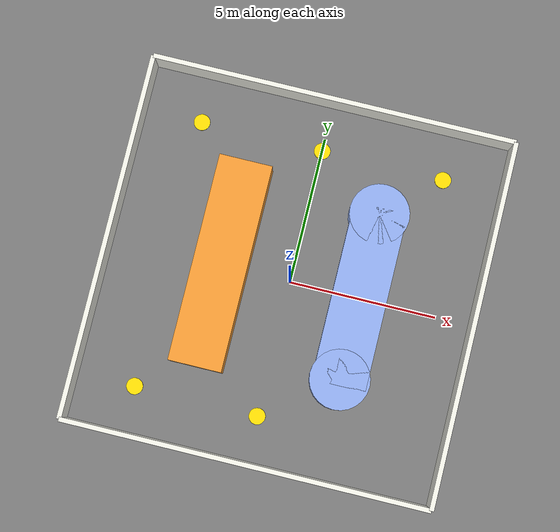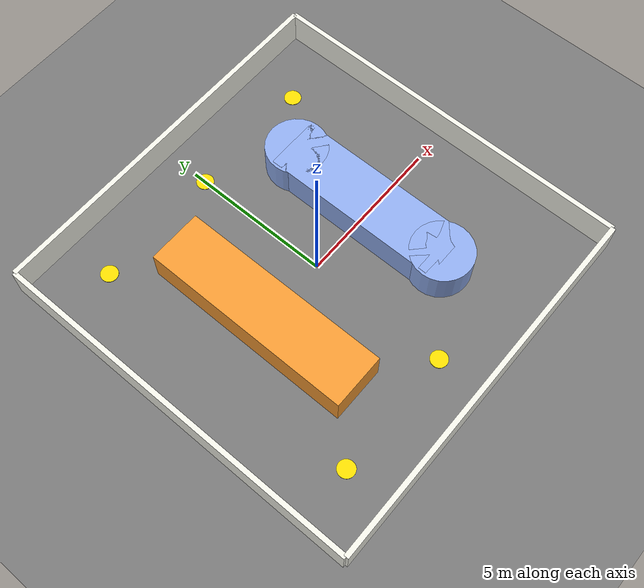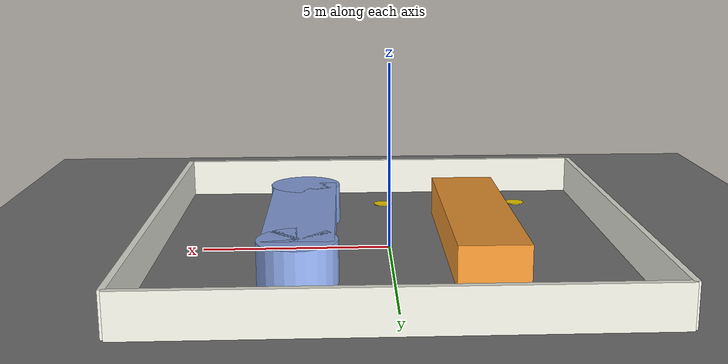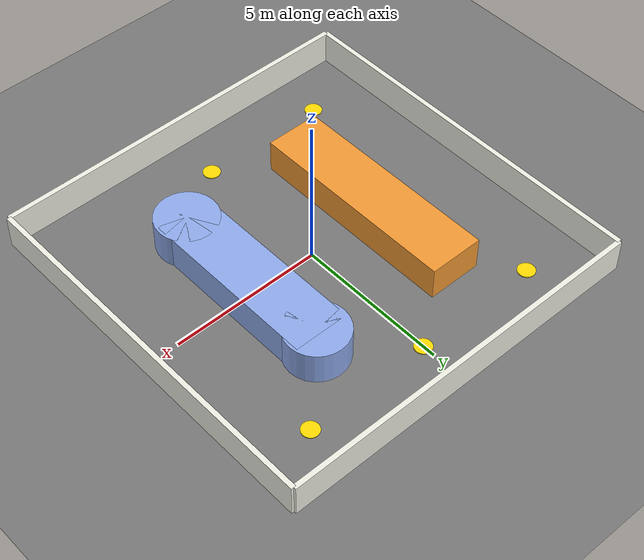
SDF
<sdf version='1.7'>
  <world name='deform_navigation_demo'>
    <light name='sun' type='directional'>
      <cast_shadows>1</cast_shadows>
      <pose>0 0 12 0 0 0</pose>
      <diffuse>0.82 0.82 0.82 1</diffuse>
      <specular>0.2 0.2 0.2 1</specular>
      <attenuation>
        <range>1000</range>
        <constant>0.9</constant>
        <linear>0.01</linear>
        <quadratic>0.001</quadratic>
      </attenuation>
      <direction>-0.25 0.15 -0.95</direction>
    </light>

    <model name='ground_plane'>
      <static>1</static>
      <link name='link'>
        <collision name='collision'>
          <geometry>
            <plane>
              <normal>0 0 1</normal>
              <size>16 16</size>
            </plane>
          </geometry>
        </collision>
        <visual name='visual'>
          <cast_shadows>0</cast_shadows>
          <geometry>
            <plane>
              <normal>0 0 1</normal>
              <size>16 16</size>
            </plane>
          </geometry>
          <material>
            <ambient>0.47 0.47 0.47 1</ambient>
            <diffuse>0.47 0.47 0.47 1</diffuse>
          </material>
        </visual>
      </link>
    </model>

    <model name='boundary_north'>
      <static>1</static>
      <pose>0.0 6.2 0.55 0 0 0</pose>
      <link name='link'>
        <collision name='collision'><geometry><box><size>12.4 0.16 1.1</size></box></geometry></collision>
        <visual name='visual'><geometry><box><size>12.4 0.16 1.1</size></box></geometry><material><ambient>0.94 0.94 0.90 1</ambient><diffuse>0.94 0.94 0.90 1</diffuse></material></visual>
      </link>
    </model>

    <model name='boundary_south'>
      <static>1</static>
      <pose>0.0 -6.2 0.55 0 0 0</pose>
      <link name='link'>
        <collision name='collision'><geometry><box><size>12.4 0.16 1.1</size></box></geometry></collision>
        <visual name='visual'><geometry><box><size>12.4 0.16 1.1</size></box></geometry><material><ambient>0.94 0.94 0.90 1</ambient><diffuse>0.94 0.94 0.90 1</diffuse></material></visual>
      </link>
    </model>

    <model name='boundary_west'>
      <static>1</static>
      <pose>-6.2 0.0 0.55 0 0 0</pose>
      <link name='link'>
        <collision name='collision'><geometry><box><size>0.16 12.4 1.1</size></box></geometry></collision>
        <visual name='visual'><geometry><box><size>0.16 12.4 1.1</size></box></geometry><material><ambient>0.94 0.94 0.90 1</ambient><diffuse>0.94 0.94 0.90 1</diffuse></material></visual>
      </link>
    </model>

    <model name='boundary_east'>
      <static>1</static>
      <pose>6.2 0.0 0.55 0 0 0</pose>
      <link name='link'>
        <collision name='collision'><geometry><box><size>0.16 12.4 1.1</size></box></geometry></collision>
        <visual name='visual'><geometry><box><size>0.16 12.4 1.1</size></box></geometry><material><ambient>0.94 0.94 0.90 1</ambient><diffuse>0.94 0.94 0.90 1</diffuse></material></visual>
      </link>
    </model>

    <model name='rectangular_wall_obstacle'>
      <static>1</static>
      <pose>-2.35 0.0 0.55 0 0 0</pose>
      <link name='link'>
        <collision name='collision'><geometry><box><size>1.8 7.0 1.1</size></box></geometry></collision>
        <visual name='visual'><geometry><box><size>1.8 7.0 1.1</size></box></geometry><material><ambient>0.95 0.60 0.20 1</ambient><diffuse>0.95 0.60 0.20 1</diffuse></material></visual>
      </link>
    </model>

    <model name='elliptical_obstacle'>
      <static>1</static>
      <pose>2.35 0.0 0 0 0 0</pose>
      <link name='ellipse_center'>
        <pose>0 0 0.55 0 0 0</pose>
        <collision name='collision'><geometry><box><size>1.8 6.0 1.1</size></box></geometry></collision>
        <visual name='visual'><geometry><box><size>1.8 6.0 1.1</size></box></geometry><material><ambient>0.56 0.67 0.92 1</ambient><diffuse>0.56 0.67 0.92 1</diffuse></material></visual>
      </link>
      <link name='ellipse_cap_south'>
        <pose>0 -2.8 0.55 0 0 0</pose>
        <collision name='collision'><geometry><cylinder><radius>1.0</radius><length>1.1</length></cylinder></geometry></collision>
        <visual name='visual'><geometry><cylinder><radius>1.0</radius><length>1.1</length></cylinder></geometry><material><ambient>0.56 0.67 0.92 1</ambient><diffuse>0.56 0.67 0.92 1</diffuse></material></visual>
      </link>
      <link name='ellipse_cap_north'>
        <pose>0 2.8 0.55 0 0 0</pose>
        <collision name='collision'><geometry><cylinder><radius>1.0</radius><length>1.1</length></cylinder></geometry></collision>
        <visual name='visual'><geometry><cylinder><radius>1.0</radius><length>1.1</length></cylinder></geometry><material><ambient>0.56 0.67 0.92 1</ambient><diffuse>0.56 0.67 0.92 1</diffuse></material></visual>
      </link>
    </model>

    <model name='yellow_goal_marker_0'>
      <static>1</static>
      <pose>4.2 4.6 0.0125 0 0 0</pose>
      <link name='link'>
        <visual name='visual'>
          <cast_shadows>0</cast_shadows>
          <visibility_flags>2</visibility_flags>
          <geometry><cylinder><radius>0.28</radius><length>0.025</length></cylinder></geometry>
          <material>
            <ambient>1.0 0.86 0.0 1</ambient>
            <diffuse>1.0 0.86 0.0 1</diffuse>
            <specular>0.25 0.22 0.02 1</specular>
            <emissive>0.18 0.14 0.0 1</emissive>
          </material>
        </visual>
      </link>
    </model>

    <model name='yellow_goal_marker_1'>
      <static>1</static>
      <pose>0.0 4.6 0.0125 0 0 0</pose>
      <link name='link'>
        <visual name='visual'>
          <cast_shadows>0</cast_shadows>
          <visibility_flags>2</visibility_flags>
          <geometry><cylinder><radius>0.28</radius><length>0.025</length></cylinder></geometry>
          <material>
            <ambient>1.0 0.86 0.0 1</ambient>
            <diffuse>1.0 0.86 0.0 1</diffuse>
            <specular>0.25 0.22 0.02 1</specular>
            <emissive>0.18 0.14 0.0 1</emissive>
          </material>
        </visual>
      </link>
    </model>

    <model name='yellow_goal_marker_2'>
      <static>1</static>
      <pose>0.0 -4.6 0.0125 0 0 0</pose>
      <link name='link'>
        <visual name='visual'>
          <cast_shadows>0</cast_shadows>
          <visibility_flags>2</visibility_flags>
          <geometry><cylinder><radius>0.28</radius><length>0.025</length></cylinder></geometry>
          <material>
            <ambient>1.0 0.86 0.0 1</ambient>
            <diffuse>1.0 0.86 0.0 1</diffuse>
            <specular>0.25 0.22 0.02 1</specular>
            <emissive>0.18 0.14 0.0 1</emissive>
          </material>
        </visual>
      </link>
    </model>

    <model name='yellow_goal_marker_3'>
      <static>1</static>
      <pose>-4.2 -4.6 0.0125 0 0 0</pose>
      <link name='link'>
        <visual name='visual'>
          <cast_shadows>0</cast_shadows>
          <visibility_flags>2</visibility_flags>
          <geometry><cylinder><radius>0.28</radius><length>0.025</length></cylinder></geometry>
          <material>
            <ambient>1.0 0.86 0.0 1</ambient>
            <diffuse>1.0 0.86 0.0 1</diffuse>
            <specular>0.25 0.22 0.02 1</specular>
            <emissive>0.18 0.14 0.0 1</emissive>
          </material>
        </visual>
      </link>
    </model>

    <model name='yellow_goal_marker_4'>
      <static>1</static>
      <pose>-4.2 4.6 0.0125 0 0 0</pose>
      <link name='link'>
        <visual name='visual'>
          <cast_shadows>0</cast_shadows>
          <visibility_flags>2</visibility_flags>
          <geometry><cylinder><radius>0.28</radius><length>0.025</length></cylinder></geometry>
          <material>
            <ambient>1.0 0.86 0.0 1</ambient>
            <diffuse>1.0 0.86 0.0 1</diffuse>
            <specular>0.25 0.22 0.02 1</specular>
            <emissive>0.18 0.14 0.0 1</emissive>
          </material>
        </visual>
      </link>
    </model>

    <gravity>0 0 -9.8</gravity>
    <physics type='ode'>
      <max_step_size>0.001</max_step_size>
      <real_time_factor>1</real_time_factor>
      <real_time_update_rate>1000</real_time_update_rate>
    </physics>
    <scene>
      <ambient>0.44 0.44 0.44 1</ambient>
      <background>0.72 0.72 0.72 1</background>
      <shadows>1</shadows>
    </scene>
    <gui fullscreen='0'>
      <camera name='user_camera'>
        <pose>0.0 -13.0 22.0 0 1.18 1.57</pose>
        <view_controller>orbit</view_controller>
        <projection_type>perspective</projection_type>
      </camera>
    </gui>
  </world>
</sdf>
